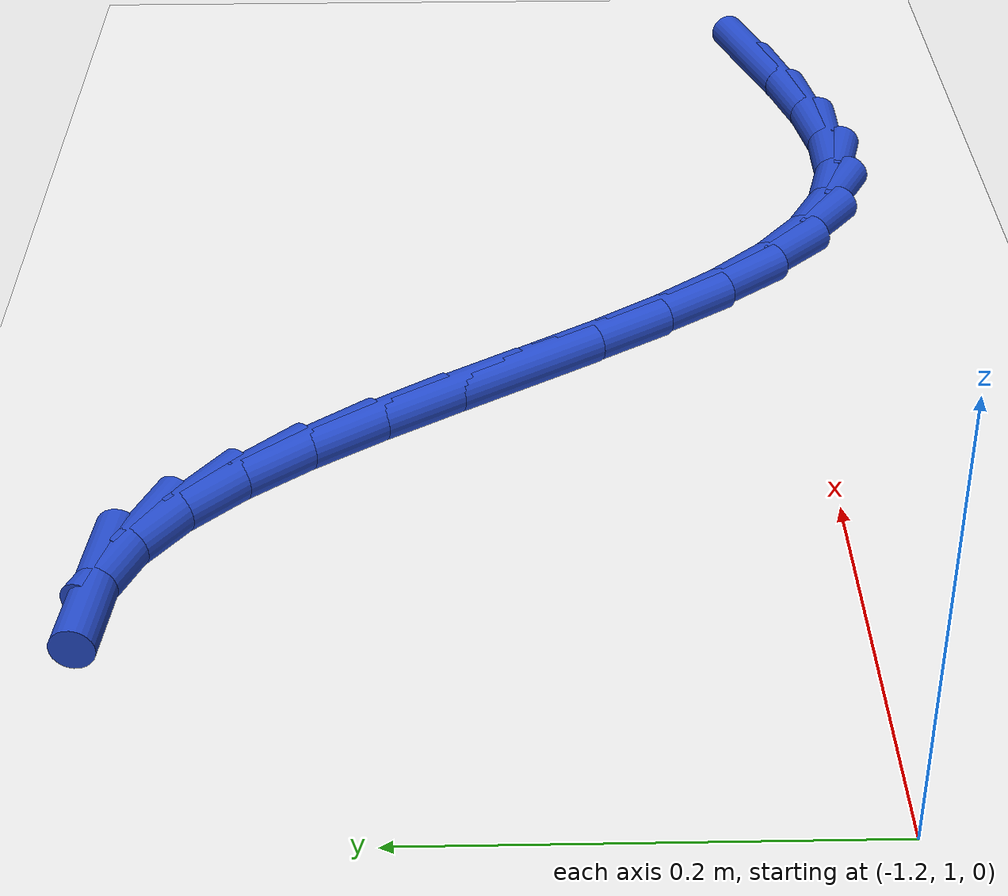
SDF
<sdf version="1.6">
 <world name="default">
  <model name="ground_plane">
   <static>1</static>
   <link name="link">
    <collision name="collision">
     <geometry><plane><normal>0 0 1</normal><size>100 100</size></plane></geometry>
     <surface><friction><ode><mu>100</mu><mu2>50</mu2></ode></friction></surface>
    </collision>
    <visual name="visual">
     <cast_shadows>0</cast_shadows>
     <geometry><plane><normal>0 0 1</normal><size>100 100</size></plane></geometry>
     <material>
      <script><uri>file://media/materials/scripts/gazebo.material</uri><name>Gazebo/WhiteGlow</name></script>
     </material>
    </visual>
   </link>
  </model>
  <model name="line">
   <link name="link_36">
    <pose>-0.5583450726561742 0.9910247207587847 0.01 0 1.57 0.3147575271745641</pose>
    <collision name="collision">
     <geometry><cylinder><radius>0.01</radius><length>0.08</length></cylinder></geometry>
    </collision>
    <visual name="visual">
     <material>
      <script><name>Gazebo/Blue</name><uri>file://media/materials/scripts/gazebo.material</uri></script>
     </material>
     <geometry><cylinder><radius>0.01</radius><length>0.08</length></cylinder></geometry>
    </visual>
   </link>
   <link name="link_37">
    <pose>-0.5974300203476028 0.9782993947542048 0.01 0 1.57 0.2577000311489832</pose>
    <collision name="collision">
     <geometry><cylinder><radius>0.01</radius><length>0.08</length></cylinder></geometry>
    </collision>
    <visual name="visual">
     <material>
      <script><name>Gazebo/Blue</name><uri>file://media/materials/scripts/gazebo.material</uri></script>
     </material>
     <geometry><cylinder><radius>0.01</radius><length>0.08</length></cylinder></geometry>
    </visual>
   </link>
   <link name="link_38">
    <pose>-0.6362891831140176 0.9680576617123192 0.01 0 1.57 0.1512619375611397</pose>
    <collision name="collision">
     <geometry><cylinder><radius>0.01</radius><length>0.08</length></cylinder></geometry>
    </collision>
    <visual name="visual">
     <material>
      <script><name>Gazebo/Blue</name><uri>file://media/materials/scripts/gazebo.material</uri></script>
     </material>
     <geometry><cylinder><radius>0.01</radius><length>0.08</length></cylinder></geometry>
    </visual>
   </link>
   <link name="link_39">
    <pose>-0.6740481768019697 0.9623022007493656 0.01 0 1.57 -0.02049459274574224</pose>
    <collision name="collision">
     <geometry><cylinder><radius>0.01</radius><length>0.08</length></cylinder></geometry>
    </collision>
    <visual name="visual">
     <material>
      <script><name>Gazebo/Blue</name><uri>file://media/materials/scripts/gazebo.material</uri></script>
     </material>
     <geometry><cylinder><radius>0.01</radius><length>0.08</length></cylinder></geometry>
    </visual>
   </link>
   <link name="link_40">
    <pose>-0.70983261725801 0.9630356909815817 0.01 0 1.57 -0.25971051715296517</pose>
    <collision name="collision">
     <geometry><cylinder><radius>0.01</radius><length>0.08</length></cylinder></geometry>
    </collision>
    <visual name="visual">
     <material>
      <script><name>Gazebo/Blue</name><uri>file://media/materials/scripts/gazebo.material</uri></script>
     </material>
     <geometry><cylinder><radius>0.01</radius><length>0.08</length></cylinder></geometry>
    </visual>
   </link>
   <link name="link_41">
    <pose>-0.7429300852464396 0.9718300720499317 0.01 0 1.57 -0.4906222337918339</pose>
    <collision name="collision">
     <geometry><cylinder><radius>0.01</radius><length>0.08</length></cylinder></geometry>
    </collision>
    <visual name="visual">
     <material>
      <script><name>Gazebo/Blue</name><uri>file://media/materials/scripts/gazebo.material</uri></script>
     </material>
     <geometry><cylinder><radius>0.01</radius><length>0.08</length></cylinder></geometry>
    </visual>
   </link>
   <link name="link_42">
    <pose>-0.7734306495558869 0.9881230975301817 0.01 0 1.57 -0.6742269239058732</pose>
    <collision name="collision">
     <geometry><cylinder><radius>0.01</radius><length>0.08</length></cylinder></geometry>
    </collision>
    <visual name="visual">
     <material>
      <script><name>Gazebo/Blue</name><uri>file://media/materials/scripts/gazebo.material</uri></script>
     </material>
     <geometry><cylinder><radius>0.01</radius><length>0.08</length></cylinder></geometry>
    </visual>
   </link>
   <link name="link_43">
    <pose>-0.8016724631631442 1.0106927506322785 0.01 0 1.57 -0.8095434952781009</pose>
    <collision name="collision">
     <geometry><cylinder><radius>0.01</radius><length>0.08</length></cylinder></geometry>
    </collision>
    <visual name="visual">
     <material>
      <script><name>Gazebo/Blue</name><uri>file://media/materials/scripts/gazebo.material</uri></script>
     </material>
     <geometry><cylinder><radius>0.01</radius><length>0.08</length></cylinder></geometry>
    </visual>
   </link>
   <link name="link_44">
    <pose>-0.8279937518074563 1.038316821057225 0.01 0 1.57 -0.9043684336429197</pose>
    <collision name="collision">
     <geometry><cylinder><radius>0.01</radius><length>0.08</length></cylinder></geometry>
    </collision>
    <visual name="visual">
     <material>
      <script><name>Gazebo/Blue</name><uri>file://media/materials/scripts/gazebo.material</uri></script>
     </material>
     <geometry><cylinder><radius>0.01</radius><length>0.08</length></cylinder></geometry>
    </visual>
   </link>
   <link name="link_45">
    <pose>-0.8527327412280671 1.069773098506022 0.01 0 1.57 -0.9670284186279875</pose>
    <collision name="collision">
     <geometry><cylinder><radius>0.01</radius><length>0.08</length></cylinder></geometry>
    </collision>
    <visual name="visual">
     <material>
      <script><name>Gazebo/Blue</name><uri>file://media/materials/scripts/gazebo.material</uri></script>
     </material>
     <geometry><cylinder><radius>0.01</radius><length>0.08</length></cylinder></geometry>
    </visual>
   </link>
   <link name="link_46">
    <pose>-0.8762276571642211 1.1038393726796731 0.01 0 1.57 -1.0035173630592025</pose>
    <collision name="collision">
     <geometry><cylinder><radius>0.01</radius><length>0.08</length></cylinder></geometry>
    </collision>
    <visual name="visual">
     <material>
      <script><name>Gazebo/Blue</name><uri>file://media/materials/scripts/gazebo.material</uri></script>
     </material>
     <geometry><cylinder><radius>0.01</radius><length>0.08</length></cylinder></geometry>
    </visual>
   </link>
   <link name="link_47">
    <pose>-0.8988167253551628 1.1392934332791795 0.01 0 1.57 -1.0170736828147484</pose>
    <collision name="collision">
     <geometry><cylinder><radius>0.01</radius><length>0.08</length></cylinder></geometry>
    </collision>
    <visual name="visual">
     <material>
      <script><name>Gazebo/Blue</name><uri>file://media/materials/scripts/gazebo.material</uri></script>
     </material>
     <geometry><cylinder><radius>0.01</radius><length>0.08</length></cylinder></geometry>
    </visual>
   </link>
   <link name="link_48">
    <pose>-0.9208381715401365 1.1749130700055441 0.01 0 1.57 -1.0082501380490017</pose>
    <collision name="collision">
     <geometry><cylinder><radius>0.01</radius><length>0.08</length></cylinder></geometry>
    </collision>
    <visual name="visual">
     <material>
      <script><name>Gazebo/Blue</name><uri>file://media/materials/scripts/gazebo.material</uri></script>
     </material>
     <geometry><cylinder><radius>0.01</radius><length>0.08</length></cylinder></geometry>
    </visual>
   </link>
   <link name="link_49">
    <pose>-0.9426302214583865 1.2094760725597689 0.01 0 1.57 -0.9747292847209108</pose>
    <collision name="collision">
     <geometry><cylinder><radius>0.01</radius><length>0.08</length></cylinder></geometry>
    </collision>
    <visual name="visual">
     <material>
      <script><name>Gazebo/Blue</name><uri>file://media/materials/scripts/gazebo.material</uri></script>
     </material>
     <geometry><cylinder><radius>0.01</radius><length>0.08</length></cylinder></geometry>
    </visual>
   </link>
   <link name="link_50">
    <pose>-0.9645311008491572 1.2417602306428557 0.01 0 1.57 -0.9105963002312113</pose>
    <collision name="collision">
     <geometry><cylinder><radius>0.01</radius><length>0.08</length></cylinder></geometry>
    </collision>
    <visual name="visual">
     <material>
      <script><name>Gazebo/Blue</name><uri>file://media/materials/scripts/gazebo.material</uri></script>
     </material>
     <geometry><cylinder><radius>0.01</radius><length>0.08</length></cylinder></geometry>
    </visual>
   </link>
   <link name="link_51">
    <pose>-0.9868790354516932 1.2705433339558068 0.01 0 1.57 -0.8050303669804222</pose>
    <collision name="collision">
     <geometry><cylinder><radius>0.01</radius><length>0.08</length></cylinder></geometry>
    </collision>
    <visual name="visual">
     <material>
      <script><name>Gazebo/Blue</name><uri>file://media/materials/scripts/gazebo.material</uri></script>
     </material>
     <geometry><cylinder><radius>0.01</radius><length>0.08</length></cylinder></geometry>
    </visual>
   </link>
   <link name="link_52">
    <pose>-1.0100122510052385 1.2946031721996245 0.01 0 1.57 -0.6414352117856895</pose>
    <collision name="collision">
     <geometry><cylinder><radius>0.01</radius><length>0.08</length></cylinder></geometry>
    </collision>
    <visual name="visual">
     <material>
      <script><name>Gazebo/Blue</name><uri>file://media/materials/scripts/gazebo.material</uri></script>
     </material>
     <geometry><cylinder><radius>0.01</radius><length>0.08</length></cylinder></geometry>
    </visual>
   </link>
   <link name="link_53">
    <pose>-1.0342689732490378 1.3127175350753113 0.01 0 1.57 -0.402408465834181</pose>
    <collision name="collision">
     <geometry><cylinder><radius>0.01</radius><length>0.08</length></cylinder></geometry>
    </collision>
    <visual name="visual">
     <material>
      <script><name>Gazebo/Blue</name><uri>file://media/materials/scripts/gazebo.material</uri></script>
     </material>
     <geometry><cylinder><radius>0.01</radius><length>0.08</length></cylinder></geometry>
    </visual>
   </link>
   <link name="link_54">
    <pose>-1.0599874279223354 1.323664212283869 0.01 0 1.57 -0.09982717758484334</pose>
    <collision name="collision">
     <geometry><cylinder><radius>0.01</radius><length>0.08</length></cylinder></geometry>
    </collision>
    <visual name="visual">
     <material>
      <script><name>Gazebo/Blue</name><uri>file://media/materials/scripts/gazebo.material</uri></script>
     </material>
     <geometry><cylinder><radius>0.01</radius><length>0.08</length></cylinder></geometry>
    </visual>
   </link>
  </model>
 </world>
</sdf>
